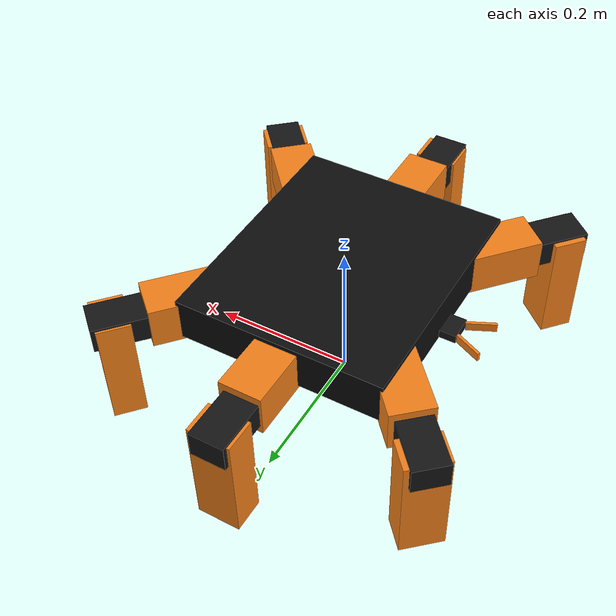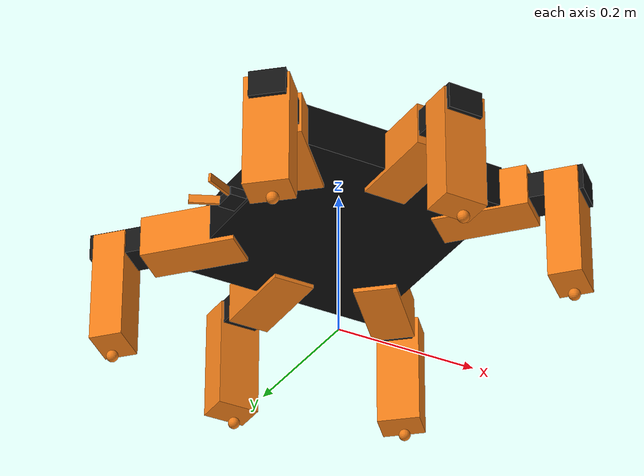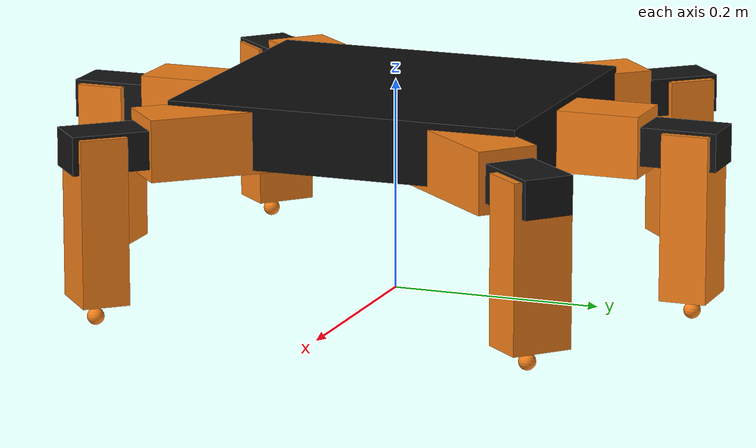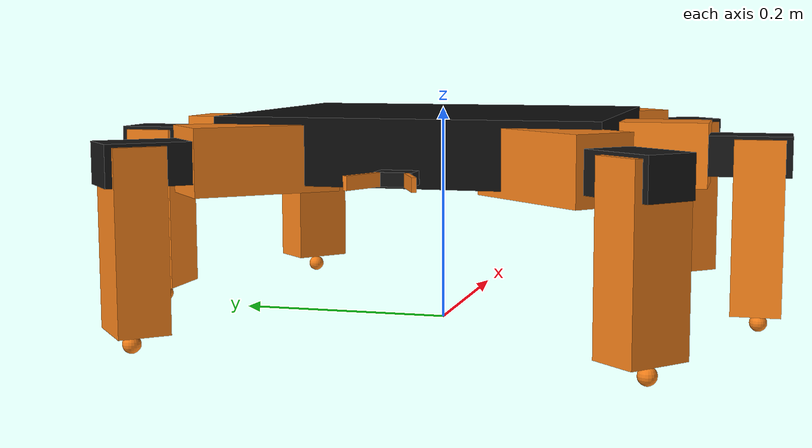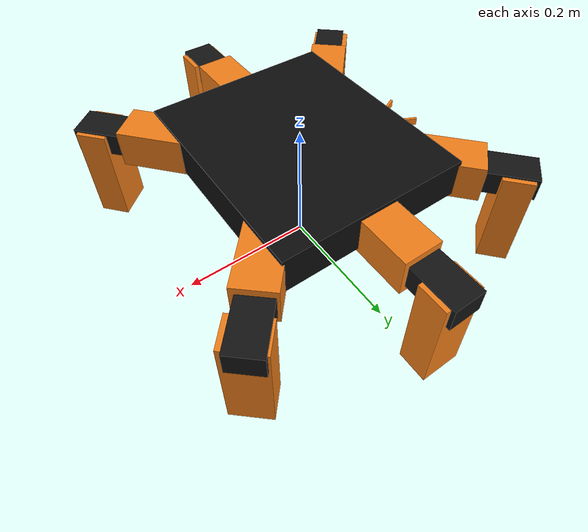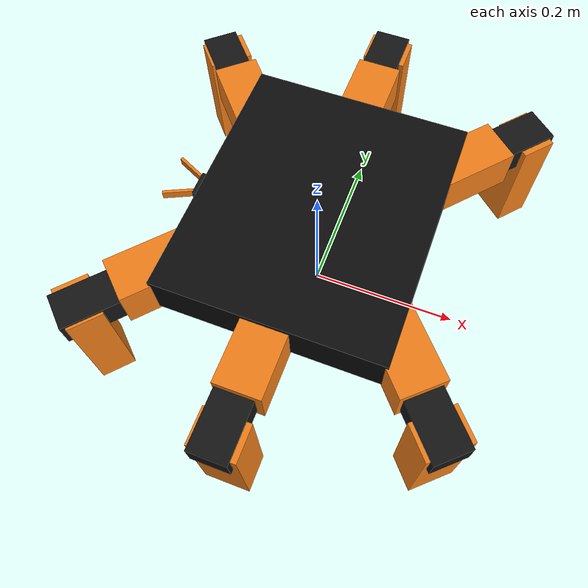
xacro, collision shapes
<?xml version="1.0"?>
<robot name="hexapod" xmlns:xacro="http://www.ros.org/wiki/xacro">

  <xacro:arg name="foot_mu" default="0.35"/>   <!-- foot friction -->

  <xacro:include filename="$(find hexapod_description)/urdf/hexapod.urdf.xacro"/>

  <!-- ===================== servos (ros2_control) ===================== -->
  <ros2_control name="GazeboSimSystem" type="system">
    <hardware>
      <plugin>gz_ros2_control/GazeboSimSystem</plugin>
    </hardware>
    <joint name="leg0_coxa_joint">
      <command_interface name="position"><param name="min">-1.1345</param><param name="max">1.1345</param></command_interface>
      <state_interface name="position"><param name="initial_value">0.0</param></state_interface>
      <state_interface name="velocity"/>
    </joint>
    <joint name="leg0_femur_joint">
      <command_interface name="position"><param name="min">-1.1345</param><param name="max">1.1345</param></command_interface>
      <state_interface name="position"><param name="initial_value">0.0</param></state_interface>
      <state_interface name="velocity"/>
    </joint>
    <joint name="leg0_tibia_joint">
      <command_interface name="position"><param name="min">-1.1345</param><param name="max">1.1345</param></command_interface>
      <state_interface name="position"><param name="initial_value">0.0</param></state_interface>
      <state_interface name="velocity"/>
    </joint>
    <joint name="leg1_coxa_joint">
      <command_interface name="position"><param name="min">-1.1345</param><param name="max">1.1345</param></command_interface>
      <state_interface name="position"><param name="initial_value">0.0</param></state_interface>
      <state_interface name="velocity"/>
    </joint>
    <joint name="leg1_femur_joint">
      <command_interface name="position"><param name="min">-1.1345</param><param name="max">1.1345</param></command_interface>
      <state_interface name="position"><param name="initial_value">0.0</param></state_interface>
      <state_interface name="velocity"/>
    </joint>
    <joint name="leg1_tibia_joint">
      <command_interface name="position"><param name="min">-1.1345</param><param name="max">1.1345</param></command_interface>
      <state_interface name="position"><param name="initial_value">0.0</param></state_interface>
      <state_interface name="velocity"/>
    </joint>
    <joint name="leg2_coxa_joint">
      <command_interface name="position"><param name="min">-1.1345</param><param name="max">1.1345</param></command_interface>
      <state_interface name="position"><param name="initial_value">0.0</param></state_interface>
      <state_interface name="velocity"/>
    </joint>
    <joint name="leg2_femur_joint">
      <command_interface name="position"><param name="min">-1.1345</param><param name="max">1.1345</param></command_interface>
      <state_interface name="position"><param name="initial_value">0.0</param></state_interface>
      <state_interface name="velocity"/>
    </joint>
    <joint name="leg2_tibia_joint">
      <command_interface name="position"><param name="min">-1.1345</param><param name="max">1.1345</param></command_interface>
      <state_interface name="position"><param name="initial_value">0.0</param></state_interface>
      <state_interface name="velocity"/>
    </joint>
    <joint name="leg3_coxa_joint">
      <command_interface name="position"><param name="min">-1.1345</param><param name="max">1.1345</param></command_interface>
      <state_interface name="position"><param name="initial_value">0.0</param></state_interface>
      <state_interface name="velocity"/>
    </joint>
    <joint name="leg3_femur_joint">
      <command_interface name="position"><param name="min">-1.1345</param><param name="max">1.1345</param></command_interface>
      <state_interface name="position"><param name="initial_value">0.0</param></state_interface>
      <state_interface name="velocity"/>
    </joint>
    <joint name="leg3_tibia_joint">
      <command_interface name="position"><param name="min">-1.1345</param><param name="max">1.1345</param></command_interface>
      <state_interface name="position"><param name="initial_value">0.0</param></state_interface>
      <state_interface name="velocity"/>
    </joint>
    <joint name="leg4_coxa_joint">
      <command_interface name="position"><param name="min">-1.1345</param><param name="max">1.1345</param></command_interface>
      <state_interface name="position"><param name="initial_value">0.0</param></state_interface>
      <state_interface name="velocity"/>
    </joint>
    <joint name="leg4_femur_joint">
      <command_interface name="position"><param name="min">-1.1345</param><param name="max">1.1345</param></command_interface>
      <state_interface name="position"><param name="initial_value">0.0</param></state_interface>
      <state_interface name="velocity"/>
    </joint>
    <joint name="leg4_tibia_joint">
      <command_interface name="position"><param name="min">-1.1345</param><param name="max">1.1345</param></command_interface>
      <state_interface name="position"><param name="initial_value">0.0</param></state_interface>
      <state_interface name="velocity"/>
    </joint>
    <joint name="leg5_coxa_joint">
      <command_interface name="position"><param name="min">-1.1345</param><param name="max">1.1345</param></command_interface>
      <state_interface name="position"><param name="initial_value">0.0</param></state_interface>
      <state_interface name="velocity"/>
    </joint>
    <joint name="leg5_femur_joint">
      <command_interface name="position"><param name="min">-1.1345</param><param name="max">1.1345</param></command_interface>
      <state_interface name="position"><param name="initial_value">0.0</param></state_interface>
      <state_interface name="velocity"/>
    </joint>
    <joint name="leg5_tibia_joint">
      <command_interface name="position"><param name="min">-1.1345</param><param name="max">1.1345</param></command_interface>
      <state_interface name="position"><param name="initial_value">0.0</param></state_interface>
      <state_interface name="velocity"/>
    </joint>
    <joint name="gripper_joint">
      <command_interface name="position"><param name="min">0.0</param><param name="max">0.4363</param></command_interface>
      <state_interface name="position"><param name="initial_value">0.0</param></state_interface>
      <state_interface name="velocity"/>
    </joint>
    <!-- mimic joint: state only, Gazebo moves it with gripper_joint -->
    <joint name="gripper_right_joint">
      <state_interface name="position"/>
      <state_interface name="velocity"/>
    </joint>
  </ros2_control>

  <gazebo>
    <plugin filename="libgz_ros2_control-system.so" name="gz_ros2_control::GazeboSimROS2ControlPlugin">
      <parameters>$(find hexapod_gazebo)/config/controllers.yaml</parameters>
      <position_proportional_gain>0.5</position_proportional_gain>
    </plugin>

    <!-- perfect odometry (odom -> base_footprint), like rf2o on the real robot -->
    <plugin filename="gz-sim-odometry-publisher-system" name="gz::sim::systems::OdometryPublisher">
      <odom_frame>odom</odom_frame>
      <robot_base_frame>base_footprint</robot_base_frame>
      <odom_topic>odom</odom_topic>
      <tf_topic>odom_tf</tf_topic>
      <odom_publish_frequency>30</odom_publish_frequency>
      <dimensions>3</dimensions>
    </plugin>
  </gazebo>

  <gazebo reference="leg0_tibia_link">
    <mu1>$(arg foot_mu)</mu1><mu2>$(arg foot_mu)</mu2><kp>1e6</kp><kd>100</kd><minDepth>0.0005</minDepth><maxVel>0.1</maxVel>
  </gazebo>
  <gazebo reference="leg1_tibia_link">
    <mu1>$(arg foot_mu)</mu1><mu2>$(arg foot_mu)</mu2><kp>1e6</kp><kd>100</kd><minDepth>0.0005</minDepth><maxVel>0.1</maxVel>
  </gazebo>
  <gazebo reference="leg2_tibia_link">
    <mu1>$(arg foot_mu)</mu1><mu2>$(arg foot_mu)</mu2><kp>1e6</kp><kd>100</kd><minDepth>0.0005</minDepth><maxVel>0.1</maxVel>
  </gazebo>
  <gazebo reference="leg3_tibia_link">
    <mu1>$(arg foot_mu)</mu1><mu2>$(arg foot_mu)</mu2><kp>1e6</kp><kd>100</kd><minDepth>0.0005</minDepth><maxVel>0.1</maxVel>
  </gazebo>
  <gazebo reference="leg4_tibia_link">
    <mu1>$(arg foot_mu)</mu1><mu2>$(arg foot_mu)</mu2><kp>1e6</kp><kd>100</kd><minDepth>0.0005</minDepth><maxVel>0.1</maxVel>
  </gazebo>
  <gazebo reference="leg5_tibia_link">
    <mu1>$(arg foot_mu)</mu1><mu2>$(arg foot_mu)</mu2><kp>1e6</kp><kd>100</kd><minDepth>0.0005</minDepth><maxVel>0.1</maxVel>
  </gazebo>

  <!-- ===================== RPLIDAR C1 ===================== -->
  <gazebo reference="laser">
    <sensor name="rplidar_c1" type="gpu_lidar">
      <topic>scan</topic>
      <gz_frame_id>laser</gz_frame_id>
      <update_rate>10</update_rate>
      <always_on>true</always_on>
      <visualize>true</visualize>
      <lidar>
        <scan>
          <horizontal>
            <samples>720</samples>
            <resolution>1</resolution>
            <min_angle>-3.14159</min_angle>
            <max_angle>3.14159</max_angle>
          </horizontal>
        </scan>
        <range>
          <min>0.05</min>
          <max>12.0</max>
          <resolution>0.01</resolution>
        </range>
        <noise>
          <type>gaussian</type>
          <mean>0.0</mean>
          <stddev>0.01</stddev>
        </noise>
      </lidar>
    </sensor>
  </gazebo>

  <!-- ===================== MPU6050 ===================== -->
  <gazebo reference="imu_link">
    <sensor name="mpu6050" type="imu">
      <topic>imu</topic>
      <gz_frame_id>imu_link</gz_frame_id>
      <update_rate>100</update_rate>
      <always_on>true</always_on>
    </sensor>
  </gazebo>

</robot>

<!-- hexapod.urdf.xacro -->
<robot name="hexapod" xmlns:xacro="http://www.ros.org/wiki/xacro">

  <xacro:arg name="use_meshes" default="true"/>
  <xacro:property name="use_meshes" value="$(arg use_meshes)"/>

  <!-- lidar mounting turn in radians (3.14159 if the scan shows up backwards) -->
  <xacro:arg name="laser_yaw" default="0.0"/>

  <!-- firmware clamps every joint to 25..155 deg = +-65 deg from neutral -->
  <xacro:property name="joint_limit"  value="${radians(65)}"/>
  <!-- servo torque limit, N m (MG996R ~1.1 at 6 V); Gazebo can raise it -->
  <xacro:arg name="servo_effort" default="1.2"/>
  <xacro:property name="servo_effort" value="$(arg servo_effort)"/>
  <xacro:property name="servo_speed"  value="5.0"/>   <!-- rad/s -->

  <material name="print"><color rgba="0.95 0.50 0.10 1"/></material>
  <material name="frame"><color rgba="0.30 0.30 0.32 1"/></material>
  <material name="servo"><color rgba="0.08 0.08 0.08 1"/></material>
  <material name="horn"><color rgba="0.92 0.92 0.92 1"/></material>
  <material name="lidar"><color rgba="0.10 0.10 0.12 1"/></material>
  <material name="board"><color rgba="0.10 0.45 0.25 1"/></material>
  <material name="pca"><color rgba="0.20 0.30 0.70 1"/></material>
  <material name="camera"><color rgba="0.05 0.05 0.05 1"/></material>

  <!-- ============================== BODY ============================== -->

  <link name="base_footprint"/>
  <joint name="base_joint" type="fixed">
    <parent link="base_footprint"/><child link="base_link"/>
    <origin xyz="0 0 0.1615"/>
  </joint>
  <link name="base_link">
    <xacro:if value="${use_meshes}">
      <visual><geometry><mesh filename="package://hexapod_description/meshes/base_camera.stl"/></geometry><material name="camera"/></visual>
      <visual><geometry><mesh filename="package://hexapod_description/meshes/base_pca.stl"/></geometry><material name="pca"/></visual>
      <visual><geometry><mesh filename="package://hexapod_description/meshes/base_servo.stl"/></geometry><material name="servo"/></visual>
      <visual><geometry><mesh filename="package://hexapod_description/meshes/base_lidar.stl"/></geometry><material name="lidar"/></visual>
      <visual><geometry><mesh filename="package://hexapod_description/meshes/base_board.stl"/></geometry><material name="board"/></visual>
      <visual><geometry><mesh filename="package://hexapod_description/meshes/base_frame.stl"/></geometry><material name="frame"/></visual>
    </xacro:if>
    <xacro:unless value="${use_meshes}">
      <visual><origin xyz="0.00012 -0.00012 0.00575"/><geometry><box size="0.28753 0.33717 0.0588"/></geometry><material name="frame"/></visual>
    </xacro:unless>
    <collision><origin xyz="0.00012 -0.00012 0.00575"/><geometry><box size="0.28753 0.33717 0.0588"/></geometry></collision>
    <inertial><origin xyz="0.00005 0.0001 0.01293"/><mass value="0.8149"/><inertia ixx="6.570e-03" ixy="-1.467e-05" ixz="8.063e-06" iyy="5.314e-03" iyz="1.999e-06" izz="1.100e-02"/></inertial>
  </link>

  <!-- ============================== LEG 0 ============================== -->

  <joint name="leg0_coxa_joint" type="revolute">
    <parent link="base_link"/><child link="leg0_coxa_link"/>
    <origin xyz="0.12041 -0.10305 0" rpy="0 0 -0.84291"/>
    <axis xyz="0 0 1"/>
    <limit lower="${-joint_limit}" upper="${joint_limit}" effort="${servo_effort}" velocity="${servo_speed}"/>
  </joint>
  <link name="leg0_coxa_link">
    <xacro:if value="${use_meshes}">
      <visual><geometry><mesh filename="package://hexapod_description/meshes/leg0_coxa_print.stl"/></geometry><material name="print"/></visual>
      <visual><geometry><mesh filename="package://hexapod_description/meshes/leg0_coxa_horn.stl"/></geometry><material name="horn"/></visual>
    </xacro:if>
    <xacro:unless value="${use_meshes}">
      <visual><origin xyz="0.03454 0.00037 0.00185"/><geometry><box size="0.12815 0.05863 0.058"/></geometry><material name="print"/></visual>
    </xacro:unless>
    <collision><origin xyz="0.03454 0.00037 0.00185"/><geometry><box size="0.12815 0.05863 0.058"/></geometry></collision>
    <inertial><origin xyz="0.0346 -0.00098 0.00296"/><mass value="0.0266"/><inertia ixx="1.210e-05" ixy="4.194e-07" ixz="5.729e-07" iyy="3.599e-05" iyz="-2.742e-08" izz="3.611e-05"/></inertial>
  </link>
  <joint name="leg0_femur_joint" type="revolute">
    <parent link="leg0_coxa_link"/><child link="leg0_femur_link"/>
    <origin xyz="0.06995 0 -0.0002" rpy="0 0 0"/>
    <axis xyz="0 -1 0"/>
    <limit lower="${-joint_limit}" upper="${joint_limit}" effort="${servo_effort}" velocity="${servo_speed}"/>
  </joint>
  <link name="leg0_femur_link">
    <xacro:if value="${use_meshes}">
      <visual><geometry><mesh filename="package://hexapod_description/meshes/leg0_femur_servo.stl"/></geometry><material name="servo"/></visual>
      <visual><geometry><mesh filename="package://hexapod_description/meshes/leg0_femur_print.stl"/></geometry><material name="print"/></visual>
    </xacro:if>
    <xacro:unless value="${use_meshes}">
      <visual><origin xyz="0.03968 0.00019 0.00204"/><geometry><box size="0.12236 0.04757 0.036"/></geometry><material name="print"/></visual>
    </xacro:unless>
    <collision><origin xyz="0.03968 0.00019 0.00204"/><geometry><box size="0.12236 0.04757 0.036"/></geometry></collision>
    <inertial><origin xyz="0.03971 -0.0009 0.00204"/><mass value="0.1363"/><inertia ixx="2.976e-05" ixy="-3.715e-07" ixz="-5.864e-13" iyy="1.814e-04" iyz="3.415e-14" izz="1.981e-04"/></inertial>
  </link>
  <joint name="leg0_tibia_joint" type="revolute">
    <parent link="leg0_femur_link"/><child link="leg0_tibia_link"/>
    <origin xyz="0.08012 0 -0.00009" rpy="0 0 0"/>
    <axis xyz="0 1 0"/>
    <limit lower="${-joint_limit}" upper="${joint_limit}" effort="${servo_effort}" velocity="${servo_speed}"/>
  </joint>
  <link name="leg0_tibia_link">
    <xacro:if value="${use_meshes}">
      <visual><geometry><mesh filename="package://hexapod_description/meshes/leg0_tibia_print.stl"/></geometry><material name="print"/></visual>
      <visual><geometry><mesh filename="package://hexapod_description/meshes/leg0_tibia_horn.stl"/></geometry><material name="horn"/></visual>
    </xacro:if>
    <xacro:unless value="${use_meshes}">
      <visual><origin xyz="-0.00724 0.00065 -0.07113"/><geometry><box size="0.04444 0.05856 0.17653"/></geometry><material name="print"/></visual>
    </xacro:unless>
    <collision><origin xyz="-0.00724 0.00065 -0.06113"/><geometry><box size="0.04444 0.05856 0.15653"/></geometry></collision>
    <collision name="leg0_foot_collision"><origin xyz="-0.00419 0.00494 -0.15323"/><geometry><sphere radius="0.008"/></geometry></collision>
    <inertial><origin xyz="-0.00076 -0.00032 -0.06129"/><mass value="0.0372"/><inertia ixx="1.191e-04" ixy="5.006e-07" ixz="1.301e-06" iyy="1.101e-04" iyz="1.752e-06" izz="1.509e-05"/></inertial>
  </link>
  <link name="leg0_foot"/>
  <joint name="leg0_foot_joint" type="fixed">
    <parent link="leg0_tibia_link"/><child link="leg0_foot"/>
    <origin xyz="-0.00419 0.00494 -0.16123"/>
  </joint>

  <!-- ============================== LEG 1 ============================== -->

  <joint name="leg1_coxa_joint" type="revolute">
    <parent link="base_link"/><child link="leg1_coxa_link"/>
    <origin xyz="0.00011 -0.14751 0" rpy="0 0 -1.56533"/>
    <axis xyz="0 0 1"/>
    <limit lower="${-joint_limit}" upper="${joint_limit}" effort="${servo_effort}" velocity="${servo_speed}"/>
  </joint>
  <link name="leg1_coxa_link">
    <xacro:if value="${use_meshes}">
      <visual><geometry><mesh filename="package://hexapod_description/meshes/leg1_coxa_print.stl"/></geometry><material name="print"/></visual>
      <visual><geometry><mesh filename="package://hexapod_description/meshes/leg1_coxa_horn.stl"/></geometry><material name="horn"/></visual>
    </xacro:if>
    <xacro:unless value="${use_meshes}">
      <visual><origin xyz="0.03462 -0.00029 -0.00035"/><geometry><box size="0.12931 0.05826 0.058"/></geometry><material name="print"/></visual>
    </xacro:unless>
    <collision><origin xyz="0.03462 -0.00029 -0.00035"/><geometry><box size="0.12931 0.05826 0.058"/></geometry></collision>
    <inertial><origin xyz="0.03503 -0.00143 0.00092"/><mass value="0.0266"/><inertia ixx="1.164e-05" ixy="8.743e-07" ixz="7.258e-07" iyy="3.596e-05" iyz="-4.580e-08" izz="3.601e-05"/></inertial>
  </link>
  <joint name="leg1_femur_joint" type="revolute">
    <parent link="leg1_coxa_link"/><child link="leg1_femur_link"/>
    <origin xyz="0.06995 0 -0.0002" rpy="0 0 0"/>
    <axis xyz="0 -1 0"/>
    <limit lower="${-joint_limit}" upper="${joint_limit}" effort="${servo_effort}" velocity="${servo_speed}"/>
  </joint>
  <link name="leg1_femur_link">
    <xacro:if value="${use_meshes}">
      <visual><geometry><mesh filename="package://hexapod_description/meshes/leg1_femur_servo.stl"/></geometry><material name="servo"/></visual>
      <visual><geometry><mesh filename="package://hexapod_description/meshes/leg1_femur_print.stl"/></geometry><material name="print"/></visual>
    </xacro:if>
    <xacro:unless value="${use_meshes}">
      <visual><origin xyz="0.04029 -0.00363 -0.00016"/><geometry><box size="0.12237 0.04778 0.036"/></geometry><material name="print"/></visual>
    </xacro:unless>
    <collision><origin xyz="0.04029 -0.00363 -0.00016"/><geometry><box size="0.12237 0.04778 0.036"/></geometry></collision>
    <inertial><origin xyz="0.04025 -0.0039 -0.00016"/><mass value="0.1310"/><inertia ixx="2.696e-05" ixy="6.408e-07" ixz="-6.588e-13" iyy="1.747e-04" iyz="-8.964e-14" izz="1.897e-04"/></inertial>
  </link>
  <joint name="leg1_tibia_joint" type="revolute">
    <parent link="leg1_femur_link"/><child link="leg1_tibia_link"/>
    <origin xyz="0.08012 0 -0.00009" rpy="0 0 0"/>
    <axis xyz="0 1 0"/>
    <limit lower="${-joint_limit}" upper="${joint_limit}" effort="${servo_effort}" velocity="${servo_speed}"/>
  </joint>
  <link name="leg1_tibia_link">
    <xacro:if value="${use_meshes}">
      <visual><geometry><mesh filename="package://hexapod_description/meshes/leg1_tibia_print.stl"/></geometry><material name="print"/></visual>
      <visual><geometry><mesh filename="package://hexapod_description/meshes/leg1_tibia_horn.stl"/></geometry><material name="horn"/></visual>
    </xacro:if>
    <xacro:unless value="${use_meshes}">
      <visual><origin xyz="-0.00663 -0.00177 -0.07333"/><geometry><box size="0.04434 0.05816 0.17653"/></geometry><material name="print"/></visual>
    </xacro:unless>
    <collision><origin xyz="-0.00663 -0.00177 -0.06333"/><geometry><box size="0.04434 0.05816 0.15653"/></geometry></collision>
    <collision name="leg1_foot_collision"><origin xyz="-0.00419 0.00494 -0.15323"/><geometry><sphere radius="0.008"/></geometry></collision>
    <inertial><origin xyz="-0.00027 -0.00261 -0.06349"/><mass value="0.0372"/><inertia ixx="1.190e-04" ixy="4.386e-07" ixz="1.326e-06" iyy="1.101e-04" iyz="2.001e-06" izz="1.494e-05"/></inertial>
  </link>
  <link name="leg1_foot"/>
  <joint name="leg1_foot_joint" type="fixed">
    <parent link="leg1_tibia_link"/><child link="leg1_foot"/>
    <origin xyz="-0.00419 0.00494 -0.16123"/>
  </joint>

  <!-- ============================== LEG 2 ============================== -->

  <joint name="leg2_coxa_joint" type="revolute">
    <parent link="base_link"/><child link="leg2_coxa_link"/>
    <origin xyz="-0.12052 -0.10344 0" rpy="0 0 -2.30169"/>
    <axis xyz="0 0 1"/>
    <limit lower="${-joint_limit}" upper="${joint_limit}" effort="${servo_effort}" velocity="${servo_speed}"/>
  </joint>
  <link name="leg2_coxa_link">
    <xacro:if value="${use_meshes}">
      <visual><geometry><mesh filename="package://hexapod_description/meshes/leg2_coxa_print.stl"/></geometry><material name="print"/></visual>
      <visual><geometry><mesh filename="package://hexapod_description/meshes/leg2_coxa_horn.stl"/></geometry><material name="horn"/></visual>
    </xacro:if>
    <xacro:unless value="${use_meshes}">
      <visual><origin xyz="0.03457 0.00011 -0.00035"/><geometry><box size="0.12919 0.05801 0.058"/></geometry><material name="print"/></visual>
    </xacro:unless>
    <collision><origin xyz="0.03457 0.00011 -0.00035"/><geometry><box size="0.12919 0.05801 0.058"/></geometry></collision>
    <inertial><origin xyz="0.03499 0.0013 0.00092"/><mass value="0.0266"/><inertia ixx="1.169e-05" ixy="-6.670e-07" ixz="7.283e-07" iyy="3.596e-05" iyz="3.954e-08" izz="3.607e-05"/></inertial>
  </link>
  <joint name="leg2_femur_joint" type="revolute">
    <parent link="leg2_coxa_link"/><child link="leg2_femur_link"/>
    <origin xyz="0.06995 0 -0.0002" rpy="0 0 0"/>
    <axis xyz="0 -1 0"/>
    <limit lower="${-joint_limit}" upper="${joint_limit}" effort="${servo_effort}" velocity="${servo_speed}"/>
  </joint>
  <link name="leg2_femur_link">
    <xacro:if value="${use_meshes}">
      <visual><geometry><mesh filename="package://hexapod_description/meshes/leg2_femur_servo.stl"/></geometry><material name="servo"/></visual>
      <visual><geometry><mesh filename="package://hexapod_description/meshes/leg2_femur_print.stl"/></geometry><material name="print"/></visual>
    </xacro:if>
    <xacro:unless value="${use_meshes}">
      <visual><origin xyz="0.04021 0.00224 -0.00016"/><geometry><box size="0.12236 0.04726 0.036"/></geometry><material name="print"/></visual>
    </xacro:unless>
    <collision><origin xyz="0.04021 0.00224 -0.00016"/><geometry><box size="0.12236 0.04726 0.036"/></geometry></collision>
    <inertial><origin xyz="0.04021 0.00253 -0.00016"/><mass value="0.1310"/><inertia ixx="2.681e-05" ixy="-1.767e-08" ixz="1.607e-13" iyy="1.747e-04" iyz="-1.130e-13" izz="1.896e-04"/></inertial>
  </link>
  <joint name="leg2_tibia_joint" type="revolute">
    <parent link="leg2_femur_link"/><child link="leg2_tibia_link"/>
    <origin xyz="0.08012 0 -0.00009" rpy="0 0 0"/>
    <axis xyz="0 1 0"/>
    <limit lower="${-joint_limit}" upper="${joint_limit}" effort="${servo_effort}" velocity="${servo_speed}"/>
  </joint>
  <link name="leg2_tibia_link">
    <xacro:if value="${use_meshes}">
      <visual><geometry><mesh filename="package://hexapod_description/meshes/leg2_tibia_print.stl"/></geometry><material name="print"/></visual>
      <visual><geometry><mesh filename="package://hexapod_description/meshes/leg2_tibia_horn.stl"/></geometry><material name="horn"/></visual>
    </xacro:if>
    <xacro:unless value="${use_meshes}">
      <visual><origin xyz="-0.00676 0.00013 -0.07333"/><geometry><box size="0.04431 0.058 0.17653"/></geometry><material name="print"/></visual>
    </xacro:unless>
    <collision><origin xyz="-0.00676 0.00013 -0.06333"/><geometry><box size="0.04431 0.058 0.15653"/></geometry></collision>
    <collision name="leg2_foot_collision"><origin xyz="-0.00419 0.00494 -0.15323"/><geometry><sphere radius="0.008"/></geometry></collision>
    <inertial><origin xyz="-0.00027 0.00097 -0.06349"/><mass value="0.0372"/><inertia ixx="1.189e-04" ixy="-4.515e-07" ixz="1.317e-06" iyy="1.100e-04" iyz="-1.998e-06" izz="1.485e-05"/></inertial>
  </link>
  <link name="leg2_foot"/>
  <joint name="leg2_foot_joint" type="fixed">
    <parent link="leg2_tibia_link"/><child link="leg2_foot"/>
    <origin xyz="-0.00419 0.00494 -0.16123"/>
  </joint>

  <!-- ============================== LEG 3 ============================== -->

  <joint name="leg3_coxa_joint" type="revolute">
    <parent link="base_link"/><child link="leg3_coxa_link"/>
    <origin xyz="0.12041 0.10305 0" rpy="0 0 0.84291"/>
    <axis xyz="0 0 -1"/>
    <limit lower="${-joint_limit}" upper="${joint_limit}" effort="${servo_effort}" velocity="${servo_speed}"/>
  </joint>
  <link name="leg3_coxa_link">
    <xacro:if value="${use_meshes}">
      <visual><geometry><mesh filename="package://hexapod_description/meshes/leg3_coxa_print.stl"/></geometry><material name="print"/></visual>
      <visual><geometry><mesh filename="package://hexapod_description/meshes/leg3_coxa_horn.stl"/></geometry><material name="horn"/></visual>
    </xacro:if>
    <xacro:unless value="${use_meshes}">
      <visual><origin xyz="0.03488 -0.00023 -0.00035"/><geometry><box size="0.12916 0.05814 0.058"/></geometry><material name="print"/></visual>
    </xacro:unless>
    <collision><origin xyz="0.03488 -0.00023 -0.00035"/><geometry><box size="0.12916 0.05814 0.058"/></geometry></collision>
    <inertial><origin xyz="0.03536 0.00099 0.00087"/><mass value="0.0266"/><inertia ixx="1.181e-05" ixy="-5.611e-07" ixz="6.627e-07" iyy="3.604e-05" iyz="3.341e-08" izz="3.614e-05"/></inertial>
  </link>
  <joint name="leg3_femur_joint" type="revolute">
    <parent link="leg3_coxa_link"/><child link="leg3_femur_link"/>
    <origin xyz="0.06995 0 -0.0002" rpy="0 0 0"/>
    <axis xyz="0 -1 0"/>
    <limit lower="${-joint_limit}" upper="${joint_limit}" effort="${servo_effort}" velocity="${servo_speed}"/>
  </joint>
  <link name="leg3_femur_link">
    <xacro:if value="${use_meshes}">
      <visual><geometry><mesh filename="package://hexapod_description/meshes/leg3_femur_servo.stl"/></geometry><material name="servo"/></visual>
      <visual><geometry><mesh filename="package://hexapod_description/meshes/leg3_femur_print.stl"/></geometry><material name="print"/></visual>
    </xacro:if>
    <xacro:unless value="${use_meshes}">
      <visual><origin xyz="0.04052 0.00123 -0.00016"/><geometry><box size="0.12237 0.04754 0.036"/></geometry><material name="print"/></visual>
    </xacro:unless>
    <collision><origin xyz="0.04052 0.00123 -0.00016"/><geometry><box size="0.12237 0.04754 0.036"/></geometry></collision>
    <inertial><origin xyz="0.04055 0.00151 -0.00016"/><mass value="0.1310"/><inertia ixx="2.689e-05" ixy="3.455e-07" ixz="-6.187e-13" iyy="1.747e-04" iyz="-2.169e-13" izz="1.897e-04"/></inertial>
  </link>
  <joint name="leg3_tibia_joint" type="revolute">
    <parent link="leg3_femur_link"/><child link="leg3_tibia_link"/>
    <origin xyz="0.08012 0 -0.00009" rpy="0 0 0"/>
    <axis xyz="0 1 0"/>
    <limit lower="${-joint_limit}" upper="${joint_limit}" effort="${servo_effort}" velocity="${servo_speed}"/>
  </joint>
  <link name="leg3_tibia_link">
    <xacro:if value="${use_meshes}">
      <visual><geometry><mesh filename="package://hexapod_description/meshes/leg3_tibia_print.stl"/></geometry><material name="print"/></visual>
      <visual><geometry><mesh filename="package://hexapod_description/meshes/leg3_tibia_horn.stl"/></geometry><material name="horn"/></visual>
    </xacro:if>
    <xacro:unless value="${use_meshes}">
      <visual><origin xyz="-0.0064 -0.00099 -0.07333"/><geometry><box size="0.04442 0.05809 0.17653"/></geometry><material name="print"/></visual>
    </xacro:unless>
    <collision><origin xyz="-0.0064 -0.00099 -0.06333"/><geometry><box size="0.04442 0.05809 0.15653"/></geometry></collision>
    <collision name="leg3_foot_collision"><origin xyz="-0.00419 -0.00494 -0.15323"/><geometry><sphere radius="0.008"/></geometry></collision>
    <inertial><origin xyz="0.00007 -0.00014 -0.06349"/><mass value="0.0372"/><inertia ixx="1.189e-04" ixy="-4.593e-07" ixz="1.306e-06" iyy="1.101e-04" iyz="-2.004e-06" izz="1.490e-05"/></inertial>
  </link>
  <link name="leg3_foot"/>
  <joint name="leg3_foot_joint" type="fixed">
    <parent link="leg3_tibia_link"/><child link="leg3_foot"/>
    <origin xyz="-0.00419 -0.00494 -0.16123"/>
  </joint>

  <!-- ============================== LEG 4 ============================== -->

  <joint name="leg4_coxa_joint" type="revolute">
    <parent link="base_link"/><child link="leg4_coxa_link"/>
    <origin xyz="0.00011 0.14751 0" rpy="0 0 1.56533"/>
    <axis xyz="0 0 -1"/>
    <limit lower="${-joint_limit}" upper="${joint_limit}" effort="${servo_effort}" velocity="${servo_speed}"/>
  </joint>
  <link name="leg4_coxa_link">
    <xacro:if value="${use_meshes}">
      <visual><geometry><mesh filename="package://hexapod_description/meshes/leg4_coxa_print.stl"/></geometry><material name="print"/></visual>
      <visual><geometry><mesh filename="package://hexapod_description/meshes/leg4_coxa_horn.stl"/></geometry><material name="horn"/></visual>
    </xacro:if>
    <xacro:unless value="${use_meshes}">
      <visual><origin xyz="0.03439 0.00035 -0.00035"/><geometry><box size="0.12933 0.05828 0.058"/></geometry><material name="print"/></visual>
    </xacro:unless>
    <collision><origin xyz="0.03439 0.00035 -0.00035"/><geometry><box size="0.12933 0.05828 0.058"/></geometry></collision>
    <inertial><origin xyz="0.03479 0.00137 0.00092"/><mass value="0.0266"/><inertia ixx="1.178e-05" ixy="-7.435e-07" ixz="7.271e-07" iyy="3.595e-05" iyz="4.332e-08" izz="3.615e-05"/></inertial>
  </link>
  <joint name="leg4_femur_joint" type="revolute">
    <parent link="leg4_coxa_link"/><child link="leg4_femur_link"/>
    <origin xyz="0.06995 0 -0.0002" rpy="0 0 0"/>
    <axis xyz="0 -1 0"/>
    <limit lower="${-joint_limit}" upper="${joint_limit}" effort="${servo_effort}" velocity="${servo_speed}"/>
  </joint>
  <link name="leg4_femur_link">
    <xacro:if value="${use_meshes}">
      <visual><geometry><mesh filename="package://hexapod_description/meshes/leg4_femur_servo.stl"/></geometry><material name="servo"/></visual>
      <visual><geometry><mesh filename="package://hexapod_description/meshes/leg4_femur_print.stl"/></geometry><material name="print"/></visual>
    </xacro:if>
    <xacro:unless value="${use_meshes}">
      <visual><origin xyz="0.04007 0.0022 -0.00016"/><geometry><box size="0.12237 0.04781 0.036"/></geometry><material name="print"/></visual>
    </xacro:unless>
    <collision><origin xyz="0.04007 0.0022 -0.00016"/><geometry><box size="0.12237 0.04781 0.036"/></geometry></collision>
    <inertial><origin xyz="0.04002 0.00247 -0.00016"/><mass value="0.1310"/><inertia ixx="2.697e-05" ixy="-6.763e-07" ixz="-1.652e-12" iyy="1.747e-04" iyz="-5.198e-14" izz="1.898e-04"/></inertial>
  </link>
  <joint name="leg4_tibia_joint" type="revolute">
    <parent link="leg4_femur_link"/><child link="leg4_tibia_link"/>
    <origin xyz="0.08012 0 -0.00009" rpy="0 0 0"/>
    <axis xyz="0 1 0"/>
    <limit lower="${-joint_limit}" upper="${joint_limit}" effort="${servo_effort}" velocity="${servo_speed}"/>
  </joint>
  <link name="leg4_tibia_link">
    <xacro:if value="${use_meshes}">
      <visual><geometry><mesh filename="package://hexapod_description/meshes/leg4_tibia_print.stl"/></geometry><material name="print"/></visual>
      <visual><geometry><mesh filename="package://hexapod_description/meshes/leg4_tibia_horn.stl"/></geometry><material name="horn"/></visual>
    </xacro:if>
    <xacro:unless value="${use_meshes}">
      <visual><origin xyz="-0.00686 0.00085 -0.07333"/><geometry><box size="0.04434 0.05817 0.17653"/></geometry><material name="print"/></visual>
    </xacro:unless>
    <collision><origin xyz="-0.00686 0.00085 -0.06333"/><geometry><box size="0.04434 0.05817 0.15653"/></geometry></collision>
    <collision name="leg4_foot_collision"><origin xyz="-0.00419 -0.00494 -0.15323"/><geometry><sphere radius="0.008"/></geometry></collision>
    <inertial><origin xyz="-0.0005 0.00167 -0.06349"/><mass value="0.0372"/><inertia ixx="1.190e-04" ixy="-4.463e-07" ixz="1.328e-06" iyy="1.101e-04" iyz="-1.939e-06" izz="1.499e-05"/></inertial>
  </link>
  <link name="leg4_foot"/>
  <joint name="leg4_foot_joint" type="fixed">
    <parent link="leg4_tibia_link"/><child link="leg4_foot"/>
    <origin xyz="-0.00419 -0.00494 -0.16123"/>
  </joint>

  <!-- ============================== LEG 5 ============================== -->

  <joint name="leg5_coxa_joint" type="revolute">
    <parent link="base_link"/><child link="leg5_coxa_link"/>
    <origin xyz="-0.12052 0.10344 0" rpy="0 0 2.30169"/>
    <axis xyz="0 0 -1"/>
    <limit lower="${-joint_limit}" upper="${joint_limit}" effort="${servo_effort}" velocity="${servo_speed}"/>
  </joint>
  <link name="leg5_coxa_link">
    <xacro:if value="${use_meshes}">
      <visual><geometry><mesh filename="package://hexapod_description/meshes/leg5_coxa_print.stl"/></geometry><material name="print"/></visual>
      <visual><geometry><mesh filename="package://hexapod_description/meshes/leg5_coxa_horn.stl"/></geometry><material name="horn"/></visual>
    </xacro:if>
    <xacro:unless value="${use_meshes}">
      <visual><origin xyz="0.03439 0.00011 -0.00035"/><geometry><box size="0.12919 0.05801 0.058"/></geometry><material name="print"/></visual>
    </xacro:unless>
    <collision><origin xyz="0.03439 0.00011 -0.00035"/><geometry><box size="0.12919 0.05801 0.058"/></geometry></collision>
    <inertial><origin xyz="0.03481 0.00125 0.00092"/><mass value="0.0266"/><inertia ixx="1.174e-05" ixy="-6.228e-07" ixz="7.268e-07" iyy="3.595e-05" iyz="3.898e-08" izz="3.611e-05"/></inertial>
  </link>
  <joint name="leg5_femur_joint" type="revolute">
    <parent link="leg5_coxa_link"/><child link="leg5_femur_link"/>
    <origin xyz="0.06995 0 -0.0002" rpy="0 0 0"/>
    <axis xyz="0 -1 0"/>
    <limit lower="${-joint_limit}" upper="${joint_limit}" effort="${servo_effort}" velocity="${servo_speed}"/>
  </joint>
  <link name="leg5_femur_link">
    <xacro:if value="${use_meshes}">
      <visual><geometry><mesh filename="package://hexapod_description/meshes/leg5_femur_servo.stl"/></geometry><material name="servo"/></visual>
      <visual><geometry><mesh filename="package://hexapod_description/meshes/leg5_femur_print.stl"/></geometry><material name="print"/></visual>
    </xacro:if>
    <xacro:unless value="${use_meshes}">
      <visual><origin xyz="0.04003 0.00174 -0.00016"/><geometry><box size="0.12236 0.04726 0.036"/></geometry><material name="print"/></visual>
    </xacro:unless>
    <collision><origin xyz="0.04003 0.00174 -0.00016"/><geometry><box size="0.12236 0.04726 0.036"/></geometry></collision>
    <inertial><origin xyz="0.04003 0.00202 -0.00016"/><mass value="0.1310"/><inertia ixx="2.681e-05" ixy="-1.766e-08" ixz="-1.531e-14" iyy="1.747e-04" iyz="-2.130e-13" izz="1.896e-04"/></inertial>
  </link>
  <joint name="leg5_tibia_joint" type="revolute">
    <parent link="leg5_femur_link"/><child link="leg5_tibia_link"/>
    <origin xyz="0.08012 0 -0.00009" rpy="0 0 0"/>
    <axis xyz="0 1 0"/>
    <limit lower="${-joint_limit}" upper="${joint_limit}" effort="${servo_effort}" velocity="${servo_speed}"/>
  </joint>
  <link name="leg5_tibia_link">
    <xacro:if value="${use_meshes}">
      <visual><geometry><mesh filename="package://hexapod_description/meshes/leg5_tibia_print.stl"/></geometry><material name="print"/></visual>
      <visual><geometry><mesh filename="package://hexapod_description/meshes/leg5_tibia_horn.stl"/></geometry><material name="horn"/></visual>
    </xacro:if>
    <xacro:unless value="${use_meshes}">
      <visual><origin xyz="-0.00694 0.00012 -0.07333"/><geometry><box size="0.04431 0.058 0.17653"/></geometry><material name="print"/></visual>
    </xacro:unless>
    <collision><origin xyz="-0.00694 0.00012 -0.06333"/><geometry><box size="0.04431 0.058 0.15653"/></geometry></collision>
    <collision name="leg5_foot_collision"><origin xyz="-0.00419 -0.00494 -0.15323"/><geometry><sphere radius="0.008"/></geometry></collision>
    <inertial><origin xyz="-0.00045 0.00094 -0.06349"/><mass value="0.0372"/><inertia ixx="1.190e-04" ixy="-4.612e-07" ixz="1.317e-06" iyy="1.100e-04" iyz="-1.935e-06" izz="1.490e-05"/></inertial>
  </link>
  <link name="leg5_foot"/>
  <joint name="leg5_foot_joint" type="fixed">
    <parent link="leg5_tibia_link"/><child link="leg5_foot"/>
    <origin xyz="-0.00419 -0.00494 -0.16123"/>
  </joint>

  <!-- ============================= SENSORS ============================= -->

  <!-- RPLIDAR C1, frame on the (approximate) scan plane -->
  <link name="laser"/>
  <joint name="laser_joint" type="fixed">
    <parent link="base_link"/><child link="laser"/>
    <origin xyz="-0.00448 -0.00012 0.06458" rpy="0 0 $(arg laser_yaw)"/>
  </joint>

  <!-- ESP-EYE camera on the front, looking forward -->
  <link name="camera_link"/>
  <joint name="camera_joint" type="fixed">
    <parent link="base_link"/><child link="camera_link"/>
    <origin xyz="0.0997 0.00414 0.03431"/>
  </joint>
  <link name="camera_optical_frame"/>
  <joint name="camera_optical_joint" type="fixed">
    <parent link="camera_link"/><child link="camera_optical_frame"/>
    <origin rpy="${-pi/2} 0 ${-pi/2}"/>
  </joint>

  <!-- MPU6050: NOT IN THE CAD - move this to where the board really is -->
  <link name="imu_link">
    <visual><geometry><box size="0.021 0.016 0.003"/></geometry><material name="board"/></visual>
  </link>
  <joint name="imu_joint" type="fixed">
    <parent link="base_link"/><child link="imu_link"/>
    <origin xyz="0 0 -0.0237"/>
  </joint>

  <!-- ============================= GRIPPER ============================= -->
  <!-- SG90 gripper: NOT IN THE CAD - simple placeholder at the BACK, jaws pointing backward -->
  <xacro:property name="jaw_travel" value="${radians(50)/2}"/>

  <link name="gripper_base">
    <visual><geometry><box size="0.023 0.033 0.012"/></geometry><material name="servo"/></visual>
    <collision><geometry><box size="0.023 0.033 0.012"/></geometry></collision>
  </link>
  <joint name="gripper_mount" type="fixed">
    <parent link="base_link"/><child link="gripper_base"/>
    <origin xyz="-0.1559 0 -0.0137" rpy="0 0 ${pi}"/>
  </joint>

  <xacro:macro name="jaw" params="name">
    <link name="${name}">
      <visual><origin xyz="0.020 0 0"/><geometry><box size="0.040 0.004 0.012"/></geometry><material name="print"/></visual>
      <collision><origin xyz="0.020 0 0"/><geometry><box size="0.040 0.004 0.012"/></geometry></collision>
      <inertial><origin xyz="0.020 0 0"/><mass value="0.005"/>
        <inertia ixx="1e-7" ixy="0" ixz="0" iyy="7e-7" iyz="0" izz="7e-7"/></inertial>
    </link>
  </xacro:macro>
  <xacro:jaw name="gripper_left_jaw"/>
  <xacro:jaw name="gripper_right_jaw"/>

  <joint name="gripper_joint" type="revolute">
    <parent link="gripper_base"/><child link="gripper_left_jaw"/>
    <origin xyz="0.012 0.012 0" rpy="0 0 ${jaw_travel}"/>
    <axis xyz="0 0 -1"/>
    <limit lower="0" upper="${jaw_travel}" effort="0.18" velocity="5.0"/>
  </joint>
  <joint name="gripper_right_joint" type="revolute">
    <parent link="gripper_base"/><child link="gripper_right_jaw"/>
    <origin xyz="0.012 -0.012 0" rpy="0 0 ${-jaw_travel}"/>
    <axis xyz="0 0 1"/>
    <limit lower="0" upper="${jaw_travel}" effort="0.18" velocity="5.0"/>
    <mimic joint="gripper_joint" multiplier="1" offset="0"/>
  </joint>

</robot>
